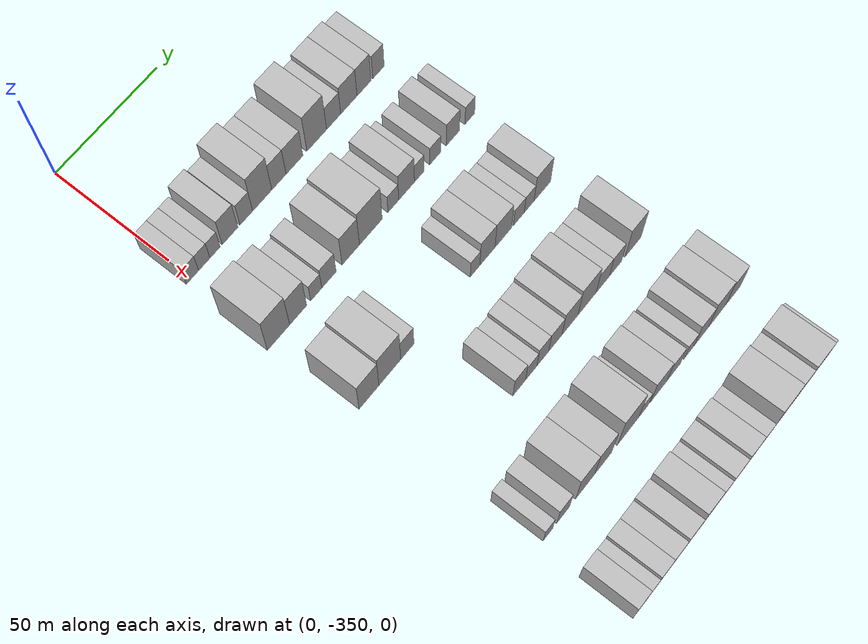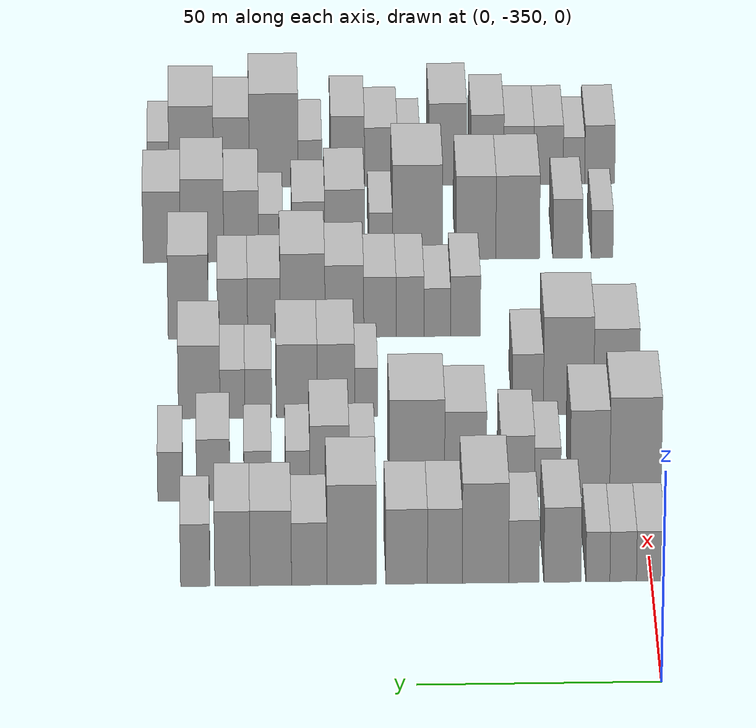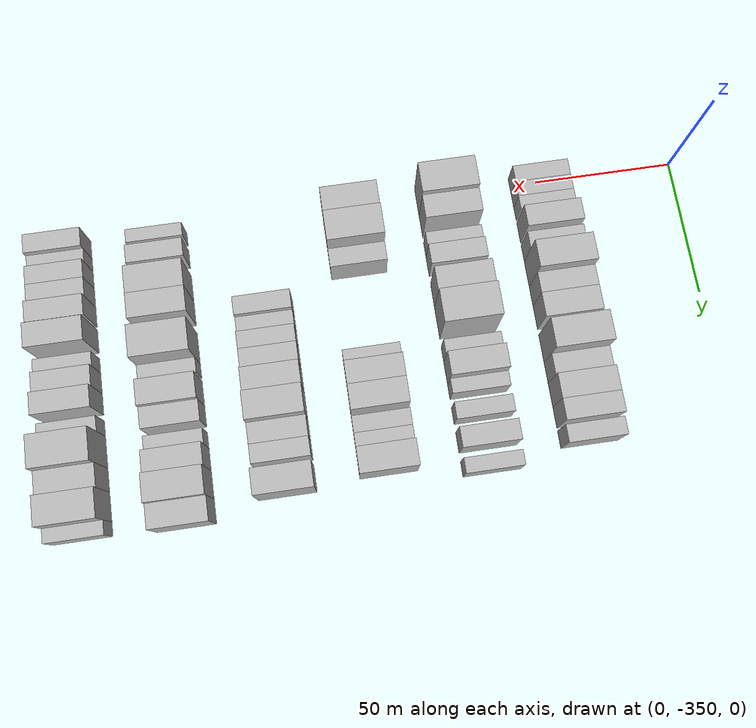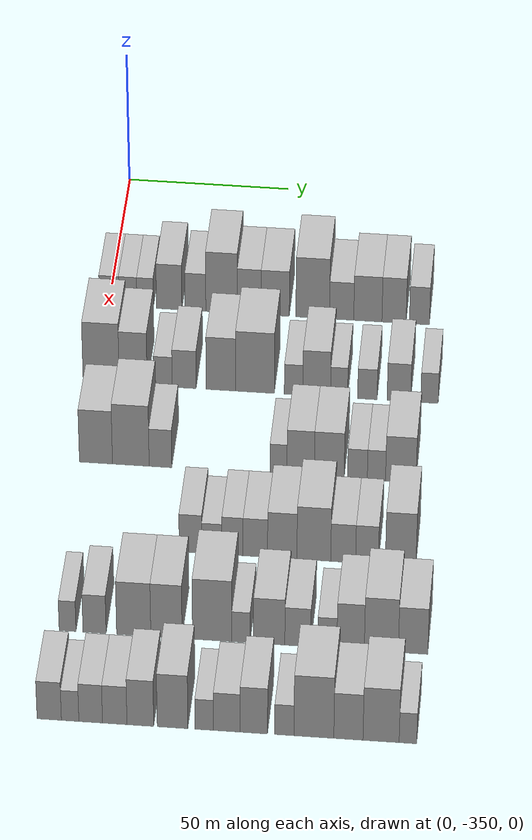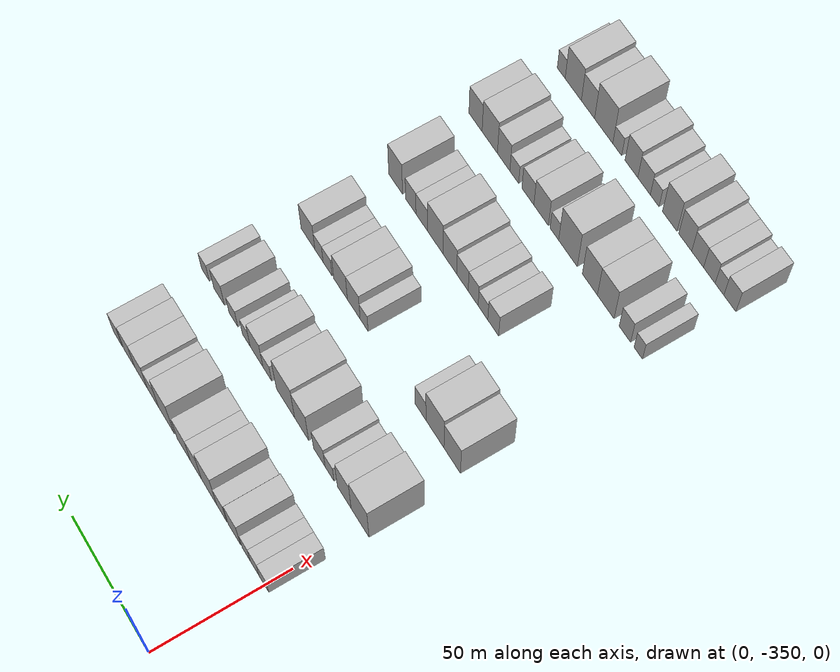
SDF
<sdf version="1.6">
 <world name="default">
  <model name="building_24">
   <static>1</static>
   <pose>50.0000 -349.7951 0 0.000000 0.000000 0.000000</pose>
   <link name="link">
    <pose>0 0 6.00 0 0 0</pose>
    <collision name="collision"><geometry><box><size>20.0000 5.9919 12.0000</size></box></geometry></collision>
    <visual name="visual">
     <cast_shadows>0</cast_shadows>
     <geometry><box><size>20.0000 5.9919 12.0000</size></box></geometry>
     <material>
      <script>
       <uri>model://HANNAS_wall/materials/scripts</uri>
       <uri>model://HANNAS_wall/materials/textures</uri>
       <name>vrc/HANNAS_wall</name>
      </script>
     </material>
    </visual>
   </link>
  </model>
  <model name="building_25">
   <static>1</static>
   <pose>50.0000 -344.0235 0 0.000000 0.000000 0.000000</pose>
   <link name="link">
    <pose>0 0 6.00 0 0 0</pose>
    <collision name="collision"><geometry><box><size>20.0000 5.5515 12.0000</size></box></geometry></collision>
    <visual name="visual">
     <cast_shadows>0</cast_shadows>
     <geometry><box><size>20.0000 5.5515 12.0000</size></box></geometry>
     <material>
      <script>
       <uri>model://HANNAS_wall/materials/scripts</uri>
       <uri>model://HANNAS_wall/materials/textures</uri>
       <name>vrc/HANNAS_wall</name>
      </script>
     </material>
    </visual>
   </link>
  </model>
  <model name="building_26">
   <static>1</static>
   <pose>50.0000 -338.7421 0 0.000000 0.000000 0.000000</pose>
   <link name="link">
    <pose>0 0 6.00 0 0 0</pose>
    <collision name="collision"><geometry><box><size>20.0000 5.0114 12.0000</size></box></geometry></collision>
    <visual name="visual">
     <cast_shadows>0</cast_shadows>
     <geometry><box><size>20.0000 5.0114 12.0000</size></box></geometry>
     <material>
      <script>
       <uri>model://HANNAS_wall/materials/scripts</uri>
       <uri>model://HANNAS_wall/materials/textures</uri>
       <name>vrc/HANNAS_wall</name>
      </script>
     </material>
    </visual>
   </link>
  </model>
  <model name="building_27">
   <static>1</static>
   <pose>50.0000 -331.3563 0 0.000000 0.000000 0.000000</pose>
   <link name="link">
    <pose>0 0 9.00 0 0 0</pose>
    <collision name="collision"><geometry><box><size>20.0000 7.7601 18.0000</size></box></geometry></collision>
    <visual name="visual">
     <cast_shadows>0</cast_shadows>
     <geometry><box><size>20.0000 7.7601 18.0000</size></box></geometry>
     <material>
      <script>
       <uri>model://HANNAS_wall/materials/scripts</uri>
       <uri>model://HANNAS_wall/materials/textures</uri>
       <name>vrc/HANNAS_wall</name>
      </script>
     </material>
    </visual>
   </link>
  </model>
  <model name="building_28">
   <static>1</static>
   <pose>50.0000 -323.2991 0 0.000000 0.000000 0.000000</pose>
   <link name="link">
    <pose>0 0 7.50 0 0 0</pose>
    <collision name="collision"><geometry><box><size>20.0000 6.3543 15.0000</size></box></geometry></collision>
    <visual name="visual">
     <cast_shadows>0</cast_shadows>
     <geometry><box><size>20.0000 6.3543 15.0000</size></box></geometry>
     <material>
      <script>
       <uri>model://HANNAS_wall/materials/scripts</uri>
       <uri>model://HANNAS_wall/materials/textures</uri>
       <name>vrc/HANNAS_wall</name>
      </script>
     </material>
    </visual>
   </link>
  </model>
  <model name="building_29">
   <static>1</static>
   <pose>50.0000 -315.2919 0 0.000000 0.000000 0.000000</pose>
   <link name="link">
    <pose>0 0 12.00 0 0 0</pose>
    <collision name="collision"><geometry><box><size>20.0000 9.6601 24.0000</size></box></geometry></collision>
    <visual name="visual">
     <cast_shadows>0</cast_shadows>
     <geometry><box><size>20.0000 9.6601 24.0000</size></box></geometry>
     <material>
      <script>
       <uri>model://HANNAS_wall/materials/scripts</uri>
       <uri>model://HANNAS_wall/materials/textures</uri>
       <name>vrc/HANNAS_wall</name>
      </script>
     </material>
    </visual>
   </link>
  </model>
  <model name="building_30">
   <static>1</static>
   <pose>50.0000 -306.8235 0 0.000000 0.000000 0.000000</pose>
   <link name="link">
    <pose>0 0 9.00 0 0 0</pose>
    <collision name="collision"><geometry><box><size>20.0000 7.2766 18.0000</size></box></geometry></collision>
    <visual name="visual">
     <cast_shadows>0</cast_shadows>
     <geometry><box><size>20.0000 7.2766 18.0000</size></box></geometry>
     <material>
      <script>
       <uri>model://HANNAS_wall/materials/scripts</uri>
       <uri>model://HANNAS_wall/materials/textures</uri>
       <name>vrc/HANNAS_wall</name>
      </script>
     </material>
    </visual>
   </link>
  </model>
  <model name="building_31">
   <static>1</static>
   <pose>50.0000 -298.8710 0 0.000000 0.000000 0.000000</pose>
   <link name="link">
    <pose>0 0 9.00 0 0 0</pose>
    <collision name="collision"><geometry><box><size>20.0000 8.6285 18.0000</size></box></geometry></collision>
    <visual name="visual">
     <cast_shadows>0</cast_shadows>
     <geometry><box><size>20.0000 8.6285 18.0000</size></box></geometry>
     <material>
      <script>
       <uri>model://HANNAS_wall/materials/scripts</uri>
       <uri>model://HANNAS_wall/materials/textures</uri>
       <name>vrc/HANNAS_wall</name>
      </script>
     </material>
    </visual>
   </link>
  </model>
  <model name="building_32">
   <static>1</static>
   <pose>50.0000 -287.4210 0 0.000000 0.000000 0.000000</pose>
   <link name="link">
    <pose>0 0 12.00 0 0 0</pose>
    <collision name="collision"><geometry><box><size>20.0000 10.2715 24.0000</size></box></geometry></collision>
    <visual name="visual">
     <cast_shadows>0</cast_shadows>
     <geometry><box><size>20.0000 10.2715 24.0000</size></box></geometry>
     <material>
      <script>
       <uri>model://HANNAS_wall/materials/scripts</uri>
       <uri>model://HANNAS_wall/materials/textures</uri>
       <name>vrc/HANNAS_wall</name>
      </script>
     </material>
    </visual>
   </link>
  </model>
  <model name="building_33">
   <static>1</static>
   <pose>50.0000 -278.5787 0 0.000000 0.000000 0.000000</pose>
   <link name="link">
    <pose>0 0 7.50 0 0 0</pose>
    <collision name="collision"><geometry><box><size>20.0000 7.4130 15.0000</size></box></geometry></collision>
    <visual name="visual">
     <cast_shadows>0</cast_shadows>
     <geometry><box><size>20.0000 7.4130 15.0000</size></box></geometry>
     <material>
      <script>
       <uri>model://HANNAS_wall/materials/scripts</uri>
       <uri>model://HANNAS_wall/materials/textures</uri>
       <name>vrc/HANNAS_wall</name>
      </script>
     </material>
    </visual>
   </link>
  </model>
  <model name="building_34">
   <static>1</static>
   <pose>50.0000 -270.5696 0 0.000000 0.000000 0.000000</pose>
   <link name="link">
    <pose>0 0 9.00 0 0 0</pose>
    <collision name="collision"><geometry><box><size>20.0000 8.6050 18.0000</size></box></geometry></collision>
    <visual name="visual">
     <cast_shadows>0</cast_shadows>
     <geometry><box><size>20.0000 8.6050 18.0000</size></box></geometry>
     <material>
      <script>
       <uri>model://HANNAS_wall/materials/scripts</uri>
       <uri>model://HANNAS_wall/materials/textures</uri>
       <name>vrc/HANNAS_wall</name>
      </script>
     </material>
    </visual>
   </link>
  </model>
  <model name="building_35">
   <static>1</static>
   <pose>50.0000 -262.5826 0 0.000000 0.000000 0.000000</pose>
   <link name="link">
    <pose>0 0 9.00 0 0 0</pose>
    <collision name="collision"><geometry><box><size>20.0000 7.3691 18.0000</size></box></geometry></collision>
    <visual name="visual">
     <cast_shadows>0</cast_shadows>
     <geometry><box><size>20.0000 7.3691 18.0000</size></box></geometry>
     <material>
      <script>
       <uri>model://HANNAS_wall/materials/scripts</uri>
       <uri>model://HANNAS_wall/materials/textures</uri>
       <name>vrc/HANNAS_wall</name>
      </script>
     </material>
    </visual>
   </link>
  </model>
  <model name="building_36">
   <static>1</static>
   <pose>50.0000 -254.8411 0 0.000000 0.000000 0.000000</pose>
   <link name="link">
    <pose>0 0 7.50 0 0 0</pose>
    <collision name="collision"><geometry><box><size>20.0000 6.1138 15.0000</size></box></geometry></collision>
    <visual name="visual">
     <cast_shadows>0</cast_shadows>
     <geometry><box><size>20.0000 6.1138 15.0000</size></box></geometry>
     <material>
      <script>
       <uri>model://HANNAS_wall/materials/scripts</uri>
       <uri>model://HANNAS_wall/materials/textures</uri>
       <name>vrc/HANNAS_wall</name>
      </script>
     </material>
    </visual>
   </link>
  </model>
  <model name="building_156">
   <static>1</static>
   <pose>85.0000 -348.2880 0 0.000000 0.000000 0.000000</pose>
   <link name="link">
    <pose>0 0 12.00 0 0 0</pose>
    <collision name="collision"><geometry><box><size>20.0000 10.9008 24.0000</size></box></geometry></collision>
    <visual name="visual">
     <cast_shadows>0</cast_shadows>
     <geometry><box><size>20.0000 10.9008 24.0000</size></box></geometry>
     <material>
      <script>
       <uri>model://HANNAS_wall/materials/scripts</uri>
       <uri>model://HANNAS_wall/materials/textures</uri>
       <name>vrc/HANNAS_wall</name>
      </script>
     </material>
    </visual>
   </link>
  </model>
  <model name="building_157">
   <static>1</static>
   <pose>85.0000 -338.6270 0 0.000000 0.000000 0.000000</pose>
   <link name="link">
    <pose>0 0 10.50 0 0 0</pose>
    <collision name="collision"><geometry><box><size>20.0000 8.4212 21.0000</size></box></geometry></collision>
    <visual name="visual">
     <cast_shadows>0</cast_shadows>
     <geometry><box><size>20.0000 8.4212 21.0000</size></box></geometry>
     <material>
      <script>
       <uri>model://HANNAS_wall/materials/scripts</uri>
       <uri>model://HANNAS_wall/materials/textures</uri>
       <name>vrc/HANNAS_wall</name>
      </script>
     </material>
    </visual>
   </link>
  </model>
  <model name="building_158">
   <static>1</static>
   <pose>85.0000 -329.6433 0 0.000000 0.000000 0.000000</pose>
   <link name="link">
    <pose>0 0 6.00 0 0 0</pose>
    <collision name="collision"><geometry><box><size>20.0000 5.5463 12.0000</size></box></geometry></collision>
    <visual name="visual">
     <cast_shadows>0</cast_shadows>
     <geometry><box><size>20.0000 5.5463 12.0000</size></box></geometry>
     <material>
      <script>
       <uri>model://HANNAS_wall/materials/scripts</uri>
       <uri>model://HANNAS_wall/materials/textures</uri>
       <name>vrc/HANNAS_wall</name>
      </script>
     </material>
    </visual>
   </link>
  </model>
  <model name="building_159">
   <static>1</static>
   <pose>85.0000 -323.2554 0 0.000000 0.000000 0.000000</pose>
   <link name="link">
    <pose>0 0 7.50 0 0 0</pose>
    <collision name="collision"><geometry><box><size>20.0000 7.2294 15.0000</size></box></geometry></collision>
    <visual name="visual">
     <cast_shadows>0</cast_shadows>
     <geometry><box><size>20.0000 7.2294 15.0000</size></box></geometry>
     <material>
      <script>
       <uri>model://HANNAS_wall/materials/scripts</uri>
       <uri>model://HANNAS_wall/materials/textures</uri>
       <name>vrc/HANNAS_wall</name>
      </script>
     </material>
    </visual>
   </link>
  </model>
  <model name="building_160">
   <static>1</static>
   <pose>85.0000 -312.2051 0 0.000000 0.000000 0.000000</pose>
   <link name="link">
    <pose>0 0 10.50 0 0 0</pose>
    <collision name="collision"><geometry><box><size>20.0000 8.8713 21.0000</size></box></geometry></collision>
    <visual name="visual">
     <cast_shadows>0</cast_shadows>
     <geometry><box><size>20.0000 8.8713 21.0000</size></box></geometry>
     <material>
      <script>
       <uri>model://HANNAS_wall/materials/scripts</uri>
       <uri>model://HANNAS_wall/materials/textures</uri>
       <name>vrc/HANNAS_wall</name>
      </script>
     </material>
    </visual>
   </link>
  </model>
  <model name="building_161">
   <static>1</static>
   <pose>85.0000 -301.9341 0 0.000000 0.000000 0.000000</pose>
   <link name="link">
    <pose>0 0 12.00 0 0 0</pose>
    <collision name="collision"><geometry><box><size>20.0000 11.6707 24.0000</size></box></geometry></collision>
    <visual name="visual">
     <cast_shadows>0</cast_shadows>
     <geometry><box><size>20.0000 11.6707 24.0000</size></box></geometry>
     <material>
      <script>
       <uri>model://HANNAS_wall/materials/scripts</uri>
       <uri>model://HANNAS_wall/materials/textures</uri>
       <name>vrc/HANNAS_wall</name>
      </script>
     </material>
    </visual>
   </link>
  </model>
  <model name="building_162">
   <static>1</static>
   <pose>85.0000 -290.3082 0 0.000000 0.000000 0.000000</pose>
   <link name="link">
    <pose>0 0 6.00 0 0 0</pose>
    <collision name="collision"><geometry><box><size>20.0000 5.5810 12.0000</size></box></geometry></collision>
    <visual name="visual">
     <cast_shadows>0</cast_shadows>
     <geometry><box><size>20.0000 5.5810 12.0000</size></box></geometry>
     <material>
      <script>
       <uri>model://HANNAS_wall/materials/scripts</uri>
       <uri>model://HANNAS_wall/materials/textures</uri>
       <name>vrc/HANNAS_wall</name>
      </script>
     </material>
    </visual>
   </link>
  </model>
  <model name="building_163">
   <static>1</static>
   <pose>85.0000 -283.3674 0 0.000000 0.000000 0.000000</pose>
   <link name="link">
    <pose>0 0 9.00 0 0 0</pose>
    <collision name="collision"><geometry><box><size>20.0000 8.3005 18.0000</size></box></geometry></collision>
    <visual name="visual">
     <cast_shadows>0</cast_shadows>
     <geometry><box><size>20.0000 8.3005 18.0000</size></box></geometry>
     <material>
      <script>
       <uri>model://HANNAS_wall/materials/scripts</uri>
       <uri>model://HANNAS_wall/materials/textures</uri>
       <name>vrc/HANNAS_wall</name>
      </script>
     </material>
    </visual>
   </link>
  </model>
  <model name="building_164">
   <static>1</static>
   <pose>85.0000 -276.6506 0 0.000000 0.000000 0.000000</pose>
   <link name="link">
    <pose>0 0 6.00 0 0 0</pose>
    <collision name="collision"><geometry><box><size>20.0000 5.1331 12.0000</size></box></geometry></collision>
    <visual name="visual">
     <cast_shadows>0</cast_shadows>
     <geometry><box><size>20.0000 5.1331 12.0000</size></box></geometry>
     <material>
      <script>
       <uri>model://HANNAS_wall/materials/scripts</uri>
       <uri>model://HANNAS_wall/materials/textures</uri>
       <name>vrc/HANNAS_wall</name>
      </script>
     </material>
    </visual>
   </link>
  </model>
  <model name="building_165">
   <static>1</static>
   <pose>85.0000 -268.1652 0 0.000000 0.000000 0.000000</pose>
   <link name="link">
    <pose>0 0 6.00 0 0 0</pose>
    <collision name="collision"><geometry><box><size>20.0000 5.8377 12.0000</size></box></geometry></collision>
    <visual name="visual">
     <cast_shadows>0</cast_shadows>
     <geometry><box><size>20.0000 5.8377 12.0000</size></box></geometry>
     <material>
      <script>
       <uri>model://HANNAS_wall/materials/scripts</uri>
       <uri>model://HANNAS_wall/materials/textures</uri>
       <name>vrc/HANNAS_wall</name>
      </script>
     </material>
    </visual>
   </link>
  </model>
  <model name="building_166">
   <static>1</static>
   <pose>85.0000 -258.7129 0 0.000000 0.000000 0.000000</pose>
   <link name="link">
    <pose>0 0 7.50 0 0 0</pose>
    <collision name="collision"><geometry><box><size>20.0000 7.0671 15.0000</size></box></geometry></collision>
    <visual name="visual">
     <cast_shadows>0</cast_shadows>
     <geometry><box><size>20.0000 7.0671 15.0000</size></box></geometry>
     <material>
      <script>
       <uri>model://HANNAS_wall/materials/scripts</uri>
       <uri>model://HANNAS_wall/materials/textures</uri>
       <name>vrc/HANNAS_wall</name>
      </script>
     </material>
    </visual>
   </link>
  </model>
  <model name="building_167">
   <static>1</static>
   <pose>85.0000 -249.5569 0 0.000000 0.000000 0.000000</pose>
   <link name="link">
    <pose>0 0 6.00 0 0 0</pose>
    <collision name="collision"><geometry><box><size>20.0000 5.2448 12.0000</size></box></geometry></collision>
    <visual name="visual">
     <cast_shadows>0</cast_shadows>
     <geometry><box><size>20.0000 5.2448 12.0000</size></box></geometry>
     <material>
      <script>
       <uri>model://HANNAS_wall/materials/scripts</uri>
       <uri>model://HANNAS_wall/materials/textures</uri>
       <name>vrc/HANNAS_wall</name>
      </script>
     </material>
    </visual>
   </link>
  </model>
  <model name="building_278">
   <static>1</static>
   <pose>120.0000 -345.8901 0 0.000000 0.000000 0.000000</pose>
   <link name="link">
    <pose>0 0 10.50 0 0 0</pose>
    <collision name="collision"><geometry><box><size>20.0000 9.8083 21.0000</size></box></geometry></collision>
    <visual name="visual">
     <cast_shadows>0</cast_shadows>
     <geometry><box><size>20.0000 9.8083 21.0000</size></box></geometry>
     <material>
      <script>
       <uri>model://HANNAS_wall/materials/scripts</uri>
       <uri>model://HANNAS_wall/materials/textures</uri>
       <name>vrc/HANNAS_wall</name>
      </script>
     </material>
    </visual>
   </link>
  </model>
  <model name="building_279">
   <static>1</static>
   <pose>120.0000 -335.5494 0 0.000000 0.000000 0.000000</pose>
   <link name="link">
    <pose>0 0 12.00 0 0 0</pose>
    <collision name="collision"><geometry><box><size>20.0000 10.8731 24.0000</size></box></geometry></collision>
    <visual name="visual">
     <cast_shadows>0</cast_shadows>
     <geometry><box><size>20.0000 10.8731 24.0000</size></box></geometry>
     <material>
      <script>
       <uri>model://HANNAS_wall/materials/scripts</uri>
       <uri>model://HANNAS_wall/materials/textures</uri>
       <name>vrc/HANNAS_wall</name>
      </script>
     </material>
    </visual>
   </link>
  </model>
  <model name="building_280">
   <static>1</static>
   <pose>120.0000 -326.7604 0 0.000000 0.000000 0.000000</pose>
   <link name="link">
    <pose>0 0 7.50 0 0 0</pose>
    <collision name="collision"><geometry><box><size>20.0000 6.7049 15.0000</size></box></geometry></collision>
    <visual name="visual">
     <cast_shadows>0</cast_shadows>
     <geometry><box><size>20.0000 6.7049 15.0000</size></box></geometry>
     <material>
      <script>
       <uri>model://HANNAS_wall/materials/scripts</uri>
       <uri>model://HANNAS_wall/materials/textures</uri>
       <name>vrc/HANNAS_wall</name>
      </script>
     </material>
    </visual>
   </link>
  </model>
  <model name="building_281">
   <static>1</static>
   <pose>120.0000 -291.8532 0 0.000000 0.000000 0.000000</pose>
   <link name="link">
    <pose>0 0 6.00 0 0 0</pose>
    <collision name="collision"><geometry><box><size>20.0000 5.0365 12.0000</size></box></geometry></collision>
    <visual name="visual">
     <cast_shadows>0</cast_shadows>
     <geometry><box><size>20.0000 5.0365 12.0000</size></box></geometry>
     <material>
      <script>
       <uri>model://HANNAS_wall/materials/scripts</uri>
       <uri>model://HANNAS_wall/materials/textures</uri>
       <name>vrc/HANNAS_wall</name>
      </script>
     </material>
    </visual>
   </link>
  </model>
  <model name="building_282">
   <static>1</static>
   <pose>120.0000 -285.2958 0 0.000000 0.000000 0.000000</pose>
   <link name="link">
    <pose>0 0 9.00 0 0 0</pose>
    <collision name="collision"><geometry><box><size>20.0000 8.0782 18.0000</size></box></geometry></collision>
    <visual name="visual">
     <cast_shadows>0</cast_shadows>
     <geometry><box><size>20.0000 8.0782 18.0000</size></box></geometry>
     <material>
      <script>
       <uri>model://HANNAS_wall/materials/scripts</uri>
       <uri>model://HANNAS_wall/materials/textures</uri>
       <name>vrc/HANNAS_wall</name>
      </script>
     </material>
    </visual>
   </link>
  </model>
  <model name="building_283">
   <static>1</static>
   <pose>120.0000 -276.8552 0 0.000000 0.000000 0.000000</pose>
   <link name="link">
    <pose>0 0 9.00 0 0 0</pose>
    <collision name="collision"><geometry><box><size>20.0000 8.8030 18.0000</size></box></geometry></collision>
    <visual name="visual">
     <cast_shadows>0</cast_shadows>
     <geometry><box><size>20.0000 8.8030 18.0000</size></box></geometry>
     <material>
      <script>
       <uri>model://HANNAS_wall/materials/scripts</uri>
       <uri>model://HANNAS_wall/materials/textures</uri>
       <name>vrc/HANNAS_wall</name>
      </script>
     </material>
    </visual>
   </link>
  </model>
  <model name="building_284">
   <static>1</static>
   <pose>120.0000 -268.5421 0 0.000000 0.000000 0.000000</pose>
   <link name="link">
    <pose>0 0 6.00 0 0 0</pose>
    <collision name="collision"><geometry><box><size>20.0000 5.8233 12.0000</size></box></geometry></collision>
    <visual name="visual">
     <cast_shadows>0</cast_shadows>
     <geometry><box><size>20.0000 5.8233 12.0000</size></box></geometry>
     <material>
      <script>
       <uri>model://HANNAS_wall/materials/scripts</uri>
       <uri>model://HANNAS_wall/materials/textures</uri>
       <name>vrc/HANNAS_wall</name>
      </script>
     </material>
    </visual>
   </link>
  </model>
  <model name="building_285">
   <static>1</static>
   <pose>120.0000 -262.9460 0 0.000000 0.000000 0.000000</pose>
   <link name="link">
    <pose>0 0 6.00 0 0 0</pose>
    <collision name="collision"><geometry><box><size>20.0000 5.3688 12.0000</size></box></geometry></collision>
    <visual name="visual">
     <cast_shadows>0</cast_shadows>
     <geometry><box><size>20.0000 5.3688 12.0000</size></box></geometry>
     <material>
      <script>
       <uri>model://HANNAS_wall/materials/scripts</uri>
       <uri>model://HANNAS_wall/materials/textures</uri>
       <name>vrc/HANNAS_wall</name>
      </script>
     </material>
    </visual>
   </link>
  </model>
  <model name="building_286">
   <static>1</static>
   <pose>120.0000 -255.7747 0 0.000000 0.000000 0.000000</pose>
   <link name="link">
    <pose>0 0 9.00 0 0 0</pose>
    <collision name="collision"><geometry><box><size>20.0000 8.9738 18.0000</size></box></geometry></collision>
    <visual name="visual">
     <cast_shadows>0</cast_shadows>
     <geometry><box><size>20.0000 8.9738 18.0000</size></box></geometry>
     <material>
      <script>
       <uri>model://HANNAS_wall/materials/scripts</uri>
       <uri>model://HANNAS_wall/materials/textures</uri>
       <name>vrc/HANNAS_wall</name>
      </script>
     </material>
    </visual>
   </link>
  </model>
  <model name="building_403">
   <static>1</static>
   <pose>155.0000 -314.3691 0 0.000000 0.000000 0.000000</pose>
   <link name="link">
    <pose>0 0 7.50 0 0 0</pose>
    <collision name="collision"><geometry><box><size>20.0000 6.5651 15.0000</size></box></geometry></collision>
    <visual name="visual">
     <cast_shadows>0</cast_shadows>
     <geometry><box><size>20.0000 6.5651 15.0000</size></box></geometry>
     <material>
      <script>
       <uri>model://HANNAS_wall/materials/scripts</uri>
       <uri>model://HANNAS_wall/materials/textures</uri>
       <name>vrc/HANNAS_wall</name>
      </script>
     </material>
    </visual>
   </link>
  </model>
  <model name="building_404">
   <static>1</static>
   <pose>155.0000 -308.1583 0 0.000000 0.000000 0.000000</pose>
   <link name="link">
    <pose>0 0 6.00 0 0 0</pose>
    <collision name="collision"><geometry><box><size>20.0000 5.8565 12.0000</size></box></geometry></collision>
    <visual name="visual">
     <cast_shadows>0</cast_shadows>
     <geometry><box><size>20.0000 5.8565 12.0000</size></box></geometry>
     <material>
      <script>
       <uri>model://HANNAS_wall/materials/scripts</uri>
       <uri>model://HANNAS_wall/materials/textures</uri>
       <name>vrc/HANNAS_wall</name>
      </script>
     </material>
    </visual>
   </link>
  </model>
  <model name="building_405">
   <static>1</static>
   <pose>155.0000 -302.1683 0 0.000000 0.000000 0.000000</pose>
   <link name="link">
    <pose>0 0 7.50 0 0 0</pose>
    <collision name="collision"><geometry><box><size>20.0000 6.1233 15.0000</size></box></geometry></collision>
    <visual name="visual">
     <cast_shadows>0</cast_shadows>
     <geometry><box><size>20.0000 6.1233 15.0000</size></box></geometry>
     <material>
      <script>
       <uri>model://HANNAS_wall/materials/scripts</uri>
       <uri>model://HANNAS_wall/materials/textures</uri>
       <name>vrc/HANNAS_wall</name>
      </script>
     </material>
    </visual>
   </link>
  </model>
  <model name="building_406">
   <static>1</static>
   <pose>155.0000 -295.5504 0 0.000000 0.000000 0.000000</pose>
   <link name="link">
    <pose>0 0 7.50 0 0 0</pose>
    <collision name="collision"><geometry><box><size>20.0000 7.1125 15.0000</size></box></geometry></collision>
    <visual name="visual">
     <cast_shadows>0</cast_shadows>
     <geometry><box><size>20.0000 7.1125 15.0000</size></box></geometry>
     <material>
      <script>
       <uri>model://HANNAS_wall/materials/scripts</uri>
       <uri>model://HANNAS_wall/materials/textures</uri>
       <name>vrc/HANNAS_wall</name>
      </script>
     </material>
    </visual>
   </link>
  </model>
  <model name="building_407">
   <static>1</static>
   <pose>155.0000 -287.7321 0 0.000000 0.000000 0.000000</pose>
   <link name="link">
    <pose>0 0 9.00 0 0 0</pose>
    <collision name="collision"><geometry><box><size>20.0000 8.5241 18.0000</size></box></geometry></collision>
    <visual name="visual">
     <cast_shadows>0</cast_shadows>
     <geometry><box><size>20.0000 8.5241 18.0000</size></box></geometry>
     <material>
      <script>
       <uri>model://HANNAS_wall/materials/scripts</uri>
       <uri>model://HANNAS_wall/materials/textures</uri>
       <name>vrc/HANNAS_wall</name>
      </script>
     </material>
    </visual>
   </link>
  </model>
  <model name="building_408">
   <static>1</static>
   <pose>155.0000 -278.5699 0 0.000000 0.000000 0.000000</pose>
   <link name="link">
    <pose>0 0 10.50 0 0 0</pose>
    <collision name="collision"><geometry><box><size>20.0000 9.8003 21.0000</size></box></geometry></collision>
    <visual name="visual">
     <cast_shadows>0</cast_shadows>
     <geometry><box><size>20.0000 9.8003 21.0000</size></box></geometry>
     <material>
      <script>
       <uri>model://HANNAS_wall/materials/scripts</uri>
       <uri>model://HANNAS_wall/materials/textures</uri>
       <name>vrc/HANNAS_wall</name>
      </script>
     </material>
    </visual>
   </link>
  </model>
  <model name="building_409">
   <static>1</static>
   <pose>155.0000 -270.0645 0 0.000000 0.000000 0.000000</pose>
   <link name="link">
    <pose>0 0 7.50 0 0 0</pose>
    <collision name="collision"><geometry><box><size>20.0000 7.2106 15.0000</size></box></geometry></collision>
    <visual name="visual">
     <cast_shadows>0</cast_shadows>
     <geometry><box><size>20.0000 7.2106 15.0000</size></box></geometry>
     <material>
      <script>
       <uri>model://HANNAS_wall/materials/scripts</uri>
       <uri>model://HANNAS_wall/materials/textures</uri>
       <name>vrc/HANNAS_wall</name>
      </script>
     </material>
    </visual>
   </link>
  </model>
  <model name="building_410">
   <static>1</static>
   <pose>155.0000 -263.1673 0 0.000000 0.000000 0.000000</pose>
   <link name="link">
    <pose>0 0 7.50 0 0 0</pose>
    <collision name="collision"><geometry><box><size>20.0000 6.5837 15.0000</size></box></geometry></collision>
    <visual name="visual">
     <cast_shadows>0</cast_shadows>
     <geometry><box><size>20.0000 6.5837 15.0000</size></box></geometry>
     <material>
      <script>
       <uri>model://HANNAS_wall/materials/scripts</uri>
       <uri>model://HANNAS_wall/materials/textures</uri>
       <name>vrc/HANNAS_wall</name>
      </script>
     </material>
    </visual>
   </link>
  </model>
  <model name="building_411">
   <static>1</static>
   <pose>155.0000 -253.4459 0 0.000000 0.000000 0.000000</pose>
   <link name="link">
    <pose>0 0 10.50 0 0 0</pose>
    <collision name="collision"><geometry><box><size>20.0000 8.8590 21.0000</size></box></geometry></collision>
    <visual name="visual">
     <cast_shadows>0</cast_shadows>
     <geometry><box><size>20.0000 8.8590 21.0000</size></box></geometry>
     <material>
      <script>
       <uri>model://HANNAS_wall/materials/scripts</uri>
       <uri>model://HANNAS_wall/materials/textures</uri>
       <name>vrc/HANNAS_wall</name>
      </script>
     </material>
    </visual>
   </link>
  </model>
  <model name="building_528">
   <static>1</static>
   <pose>190.0000 -346.0598 0 0.000000 0.000000 0.000000</pose>
   <link name="link">
    <pose>0 0 6.00 0 0 0</pose>
    <collision name="collision"><geometry><box><size>20.0000 4.8238 12.0000</size></box></geometry></collision>
    <visual name="visual">
     <cast_shadows>0</cast_shadows>
     <geometry><box><size>20.0000 4.8238 12.0000</size></box></geometry>
     <material>
      <script>
       <uri>model://HANNAS_wall/materials/scripts</uri>
       <uri>model://HANNAS_wall/materials/textures</uri>
       <name>vrc/HANNAS_wall</name>
      </script>
     </material>
    </visual>
   </link>
  </model>
  <model name="building_529">
   <static>1</static>
   <pose>190.0000 -338.3326 0 0.000000 0.000000 0.000000</pose>
   <link name="link">
    <pose>0 0 7.50 0 0 0</pose>
    <collision name="collision"><geometry><box><size>20.0000 6.6307 15.0000</size></box></geometry></collision>
    <visual name="visual">
     <cast_shadows>0</cast_shadows>
     <geometry><box><size>20.0000 6.6307 15.0000</size></box></geometry>
     <material>
      <script>
       <uri>model://HANNAS_wall/materials/scripts</uri>
       <uri>model://HANNAS_wall/materials/textures</uri>
       <name>vrc/HANNAS_wall</name>
      </script>
     </material>
    </visual>
   </link>
  </model>
  <model name="building_530">
   <static>1</static>
   <pose>190.0000 -327.1294 0 0.000000 0.000000 0.000000</pose>
   <link name="link">
    <pose>0 0 10.50 0 0 0</pose>
    <collision name="collision"><geometry><box><size>20.0000 9.7756 21.0000</size></box></geometry></collision>
    <visual name="visual">
     <cast_shadows>0</cast_shadows>
     <geometry><box><size>20.0000 9.7756 21.0000</size></box></geometry>
     <material>
      <script>
       <uri>model://HANNAS_wall/materials/scripts</uri>
       <uri>model://HANNAS_wall/materials/textures</uri>
       <name>vrc/HANNAS_wall</name>
      </script>
     </material>
    </visual>
   </link>
  </model>
  <model name="building_531">
   <static>1</static>
   <pose>190.0000 -317.7771 0 0.000000 0.000000 0.000000</pose>
   <link name="link">
    <pose>0 0 10.50 0 0 0</pose>
    <collision name="collision"><geometry><box><size>20.0000 8.9290 21.0000</size></box></geometry></collision>
    <visual name="visual">
     <cast_shadows>0</cast_shadows>
     <geometry><box><size>20.0000 8.9290 21.0000</size></box></geometry>
     <material>
      <script>
       <uri>model://HANNAS_wall/materials/scripts</uri>
       <uri>model://HANNAS_wall/materials/textures</uri>
       <name>vrc/HANNAS_wall</name>
      </script>
     </material>
    </visual>
   </link>
  </model>
  <model name="building_532">
   <static>1</static>
   <pose>190.0000 -304.7064 0 0.000000 0.000000 0.000000</pose>
   <link name="link">
    <pose>0 0 12.00 0 0 0</pose>
    <collision name="collision"><geometry><box><size>20.0000 11.2124 24.0000</size></box></geometry></collision>
    <visual name="visual">
     <cast_shadows>0</cast_shadows>
     <geometry><box><size>20.0000 11.2124 24.0000</size></box></geometry>
     <material>
      <script>
       <uri>model://HANNAS_wall/materials/scripts</uri>
       <uri>model://HANNAS_wall/materials/textures</uri>
       <name>vrc/HANNAS_wall</name>
      </script>
     </material>
    </visual>
   </link>
  </model>
  <model name="building_533">
   <static>1</static>
   <pose>190.0000 -296.4987 0 0.000000 0.000000 0.000000</pose>
   <link name="link">
    <pose>0 0 6.00 0 0 0</pose>
    <collision name="collision"><geometry><box><size>20.0000 5.2029 12.0000</size></box></geometry></collision>
    <visual name="visual">
     <cast_shadows>0</cast_shadows>
     <geometry><box><size>20.0000 5.2029 12.0000</size></box></geometry>
     <material>
      <script>
       <uri>model://HANNAS_wall/materials/scripts</uri>
       <uri>model://HANNAS_wall/materials/textures</uri>
       <name>vrc/HANNAS_wall</name>
      </script>
     </material>
    </visual>
   </link>
  </model>
  <model name="building_534">
   <static>1</static>
   <pose>190.0000 -288.4449 0 0.000000 0.000000 0.000000</pose>
   <link name="link">
    <pose>0 0 9.00 0 0 0</pose>
    <collision name="collision"><geometry><box><size>20.0000 8.9047 18.0000</size></box></geometry></collision>
    <visual name="visual">
     <cast_shadows>0</cast_shadows>
     <geometry><box><size>20.0000 8.9047 18.0000</size></box></geometry>
     <material>
      <script>
       <uri>model://HANNAS_wall/materials/scripts</uri>
       <uri>model://HANNAS_wall/materials/textures</uri>
       <name>vrc/HANNAS_wall</name>
      </script>
     </material>
    </visual>
   </link>
  </model>
  <model name="building_535">
   <static>1</static>
   <pose>190.0000 -280.3083 0 0.000000 0.000000 0.000000</pose>
   <link name="link">
    <pose>0 0 7.50 0 0 0</pose>
    <collision name="collision"><geometry><box><size>20.0000 7.3685 15.0000</size></box></geometry></collision>
    <visual name="visual">
     <cast_shadows>0</cast_shadows>
     <geometry><box><size>20.0000 7.3685 15.0000</size></box></geometry>
     <material>
      <script>
       <uri>model://HANNAS_wall/materials/scripts</uri>
       <uri>model://HANNAS_wall/materials/textures</uri>
       <name>vrc/HANNAS_wall</name>
      </script>
     </material>
    </visual>
   </link>
  </model>
  <model name="building_536">
   <static>1</static>
   <pose>190.0000 -271.8968 0 0.000000 0.000000 0.000000</pose>
   <link name="link">
    <pose>0 0 6.00 0 0 0</pose>
    <collision name="collision"><geometry><box><size>20.0000 5.4544 12.0000</size></box></geometry></collision>
    <visual name="visual">
     <cast_shadows>0</cast_shadows>
     <geometry><box><size>20.0000 5.4544 12.0000</size></box></geometry>
     <material>
      <script>
       <uri>model://HANNAS_wall/materials/scripts</uri>
       <uri>model://HANNAS_wall/materials/textures</uri>
       <name>vrc/HANNAS_wall</name>
      </script>
     </material>
    </visual>
   </link>
  </model>
  <model name="building_537">
   <static>1</static>
   <pose>190.0000 -265.2748 0 0.000000 0.000000 0.000000</pose>
   <link name="link">
    <pose>0 0 9.00 0 0 0</pose>
    <collision name="collision"><geometry><box><size>20.0000 7.7896 18.0000</size></box></geometry></collision>
    <visual name="visual">
     <cast_shadows>0</cast_shadows>
     <geometry><box><size>20.0000 7.7896 18.0000</size></box></geometry>
     <material>
      <script>
       <uri>model://HANNAS_wall/materials/scripts</uri>
       <uri>model://HANNAS_wall/materials/textures</uri>
       <name>vrc/HANNAS_wall</name>
      </script>
     </material>
    </visual>
   </link>
  </model>
  <model name="building_538">
   <static>1</static>
   <pose>190.0000 -256.5528 0 0.000000 0.000000 0.000000</pose>
   <link name="link">
    <pose>0 0 10.50 0 0 0</pose>
    <collision name="collision"><geometry><box><size>20.0000 9.6544 21.0000</size></box></geometry></collision>
    <visual name="visual">
     <cast_shadows>0</cast_shadows>
     <geometry><box><size>20.0000 9.6544 21.0000</size></box></geometry>
     <material>
      <script>
       <uri>model://HANNAS_wall/materials/scripts</uri>
       <uri>model://HANNAS_wall/materials/textures</uri>
       <name>vrc/HANNAS_wall</name>
      </script>
     </material>
    </visual>
   </link>
  </model>
  <model name="building_539">
   <static>1</static>
   <pose>190.0000 -247.5393 0 0.000000 0.000000 0.000000</pose>
   <link name="link">
    <pose>0 0 9.00 0 0 0</pose>
    <collision name="collision"><geometry><box><size>20.0000 8.3726 18.0000</size></box></geometry></collision>
    <visual name="visual">
     <cast_shadows>0</cast_shadows>
     <geometry><box><size>20.0000 8.3726 18.0000</size></box></geometry>
     <material>
      <script>
       <uri>model://HANNAS_wall/materials/scripts</uri>
       <uri>model://HANNAS_wall/materials/textures</uri>
       <name>vrc/HANNAS_wall</name>
      </script>
     </material>
    </visual>
   </link>
  </model>
  <model name="building_655">
   <static>1</static>
   <pose>225.0000 -347.0946 0 0.000000 0.000000 0.000000</pose>
   <link name="link">
    <pose>0 0 7.50 0 0 0</pose>
    <collision name="collision"><geometry><box><size>20.0000 6.8403 15.0000</size></box></geometry></collision>
    <visual name="visual">
     <cast_shadows>0</cast_shadows>
     <geometry><box><size>20.0000 6.8403 15.0000</size></box></geometry>
     <material>
      <script>
       <uri>model://HANNAS_wall/materials/scripts</uri>
       <uri>model://HANNAS_wall/materials/textures</uri>
       <name>vrc/HANNAS_wall</name>
      </script>
     </material>
    </visual>
   </link>
  </model>
  <model name="building_656">
   <static>1</static>
   <pose>225.0000 -341.2176 0 0.000000 0.000000 0.000000</pose>
   <link name="link">
    <pose>0 0 6.00 0 0 0</pose>
    <collision name="collision"><geometry><box><size>20.0000 4.9135 12.0000</size></box></geometry></collision>
    <visual name="visual">
     <cast_shadows>0</cast_shadows>
     <geometry><box><size>20.0000 4.9135 12.0000</size></box></geometry>
     <material>
      <script>
       <uri>model://HANNAS_wall/materials/scripts</uri>
       <uri>model://HANNAS_wall/materials/textures</uri>
       <name>vrc/HANNAS_wall</name>
      </script>
     </material>
    </visual>
   </link>
  </model>
  <model name="building_657">
   <static>1</static>
   <pose>225.0000 -335.4386 0 0.000000 0.000000 0.000000</pose>
   <link name="link">
    <pose>0 0 7.50 0 0 0</pose>
    <collision name="collision"><geometry><box><size>20.0000 6.6446 15.0000</size></box></geometry></collision>
    <visual name="visual">
     <cast_shadows>0</cast_shadows>
     <geometry><box><size>20.0000 6.6446 15.0000</size></box></geometry>
     <material>
      <script>
       <uri>model://HANNAS_wall/materials/scripts</uri>
       <uri>model://HANNAS_wall/materials/textures</uri>
       <name>vrc/HANNAS_wall</name>
      </script>
     </material>
    </visual>
   </link>
  </model>
  <model name="building_658">
   <static>1</static>
   <pose>225.0000 -328.6780 0 0.000000 0.000000 0.000000</pose>
   <link name="link">
    <pose>0 0 7.50 0 0 0</pose>
    <collision name="collision"><geometry><box><size>20.0000 6.8765 15.0000</size></box></geometry></collision>
    <visual name="visual">
     <cast_shadows>0</cast_shadows>
     <geometry><box><size>20.0000 6.8765 15.0000</size></box></geometry>
     <material>
      <script>
       <uri>model://HANNAS_wall/materials/scripts</uri>
       <uri>model://HANNAS_wall/materials/textures</uri>
       <name>vrc/HANNAS_wall</name>
      </script>
     </material>
    </visual>
   </link>
  </model>
  <model name="building_659">
   <static>1</static>
   <pose>225.0000 -321.4890 0 0.000000 0.000000 0.000000</pose>
   <link name="link">
    <pose>0 0 9.00 0 0 0</pose>
    <collision name="collision"><geometry><box><size>20.0000 7.5015 18.0000</size></box></geometry></collision>
    <visual name="visual">
     <cast_shadows>0</cast_shadows>
     <geometry><box><size>20.0000 7.5015 18.0000</size></box></geometry>
     <material>
      <script>
       <uri>model://HANNAS_wall/materials/scripts</uri>
       <uri>model://HANNAS_wall/materials/textures</uri>
       <name>vrc/HANNAS_wall</name>
      </script>
     </material>
    </visual>
   </link>
  </model>
  <model name="building_660">
   <static>1</static>
   <pose>225.0000 -312.4482 0 0.000000 0.000000 0.000000</pose>
   <link name="link">
    <pose>0 0 10.50 0 0 0</pose>
    <collision name="collision"><geometry><box><size>20.0000 8.5801 21.0000</size></box></geometry></collision>
    <visual name="visual">
     <cast_shadows>0</cast_shadows>
     <geometry><box><size>20.0000 8.5801 21.0000</size></box></geometry>
     <material>
      <script>
       <uri>model://HANNAS_wall/materials/scripts</uri>
       <uri>model://HANNAS_wall/materials/textures</uri>
       <name>vrc/HANNAS_wall</name>
      </script>
     </material>
    </visual>
   </link>
  </model>
  <model name="building_661">
   <static>1</static>
   <pose>225.0000 -303.5731 0 0.000000 0.000000 0.000000</pose>
   <link name="link">
    <pose>0 0 6.00 0 0 0</pose>
    <collision name="collision"><geometry><box><size>20.0000 5.1701 12.0000</size></box></geometry></collision>
    <visual name="visual">
     <cast_shadows>0</cast_shadows>
     <geometry><box><size>20.0000 5.1701 12.0000</size></box></geometry>
     <material>
      <script>
       <uri>model://HANNAS_wall/materials/scripts</uri>
       <uri>model://HANNAS_wall/materials/textures</uri>
       <name>vrc/HANNAS_wall</name>
      </script>
     </material>
    </visual>
   </link>
  </model>
  <model name="building_662">
   <static>1</static>
   <pose>225.0000 -297.2573 0 0.000000 0.000000 0.000000</pose>
   <link name="link">
    <pose>0 0 7.50 0 0 0</pose>
    <collision name="collision"><geometry><box><size>20.0000 7.4616 15.0000</size></box></geometry></collision>
    <visual name="visual">
     <cast_shadows>0</cast_shadows>
     <geometry><box><size>20.0000 7.4616 15.0000</size></box></geometry>
     <material>
      <script>
       <uri>model://HANNAS_wall/materials/scripts</uri>
       <uri>model://HANNAS_wall/materials/textures</uri>
       <name>vrc/HANNAS_wall</name>
      </script>
     </material>
    </visual>
   </link>
  </model>
  <model name="building_663">
   <static>1</static>
   <pose>225.0000 -289.6871 0 0.000000 0.000000 0.000000</pose>
   <link name="link">
    <pose>0 0 9.00 0 0 0</pose>
    <collision name="collision"><geometry><box><size>20.0000 7.6789 18.0000</size></box></geometry></collision>
    <visual name="visual">
     <cast_shadows>0</cast_shadows>
     <geometry><box><size>20.0000 7.6789 18.0000</size></box></geometry>
     <material>
      <script>
       <uri>model://HANNAS_wall/materials/scripts</uri>
       <uri>model://HANNAS_wall/materials/textures</uri>
       <name>vrc/HANNAS_wall</name>
      </script>
     </material>
    </visual>
   </link>
  </model>
  <model name="building_664">
   <static>1</static>
   <pose>225.0000 -281.1536 0 0.000000 0.000000 0.000000</pose>
   <link name="link">
    <pose>0 0 6.00 0 0 0</pose>
    <collision name="collision"><geometry><box><size>20.0000 5.3882 12.0000</size></box></geometry></collision>
    <visual name="visual">
     <cast_shadows>0</cast_shadows>
     <geometry><box><size>20.0000 5.3882 12.0000</size></box></geometry>
     <material>
      <script>
       <uri>model://HANNAS_wall/materials/scripts</uri>
       <uri>model://HANNAS_wall/materials/textures</uri>
       <name>vrc/HANNAS_wall</name>
      </script>
     </material>
    </visual>
   </link>
  </model>
  <model name="building_665">
   <static>1</static>
   <pose>225.0000 -272.8930 0 0.000000 0.000000 0.000000</pose>
   <link name="link">
    <pose>0 0 12.00 0 0 0</pose>
    <collision name="collision"><geometry><box><size>20.0000 11.1330 24.0000</size></box></geometry></collision>
    <visual name="visual">
     <cast_shadows>0</cast_shadows>
     <geometry><box><size>20.0000 11.1330 24.0000</size></box></geometry>
     <material>
      <script>
       <uri>model://HANNAS_wall/materials/scripts</uri>
       <uri>model://HANNAS_wall/materials/textures</uri>
       <name>vrc/HANNAS_wall</name>
      </script>
     </material>
    </visual>
   </link>
  </model>
  <model name="building_666">
   <static>1</static>
   <pose>225.0000 -263.2548 0 0.000000 0.000000 0.000000</pose>
   <link name="link">
    <pose>0 0 9.00 0 0 0</pose>
    <collision name="collision"><geometry><box><size>20.0000 8.1435 18.0000</size></box></geometry></collision>
    <visual name="visual">
     <cast_shadows>0</cast_shadows>
     <geometry><box><size>20.0000 8.1435 18.0000</size></box></geometry>
     <material>
      <script>
       <uri>model://HANNAS_wall/materials/scripts</uri>
       <uri>model://HANNAS_wall/materials/textures</uri>
       <name>vrc/HANNAS_wall</name>
      </script>
     </material>
    </visual>
   </link>
  </model>
  <model name="building_667">
   <static>1</static>
   <pose>225.0000 -254.1480 0 0.000000 0.000000 0.000000</pose>
   <link name="link">
    <pose>0 0 10.50 0 0 0</pose>
    <collision name="collision"><geometry><box><size>20.0000 10.0701 21.0000</size></box></geometry></collision>
    <visual name="visual">
     <cast_shadows>0</cast_shadows>
     <geometry><box><size>20.0000 10.0701 21.0000</size></box></geometry>
     <material>
      <script>
       <uri>model://HANNAS_wall/materials/scripts</uri>
       <uri>model://HANNAS_wall/materials/textures</uri>
       <name>vrc/HANNAS_wall</name>
      </script>
     </material>
    </visual>
   </link>
  </model>
  <model name="building_668">
   <static>1</static>
   <pose>225.0000 -246.6588 0 0.000000 0.000000 0.000000</pose>
   <link name="link">
    <pose>0 0 6.00 0 0 0</pose>
    <collision name="collision"><geometry><box><size>20.0000 4.9083 12.0000</size></box></geometry></collision>
    <visual name="visual">
     <cast_shadows>0</cast_shadows>
     <geometry><box><size>20.0000 4.9083 12.0000</size></box></geometry>
     <material>
      <script>
       <uri>model://HANNAS_wall/materials/scripts</uri>
       <uri>model://HANNAS_wall/materials/textures</uri>
       <name>vrc/HANNAS_wall</name>
      </script>
     </material>
    </visual>
   </link>
  </model>
 </world>
</sdf>
